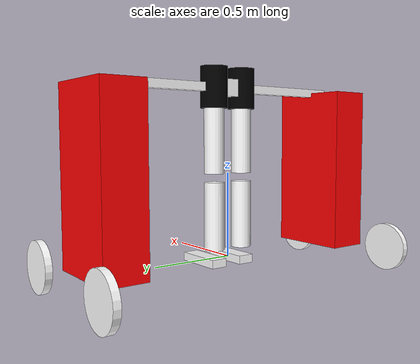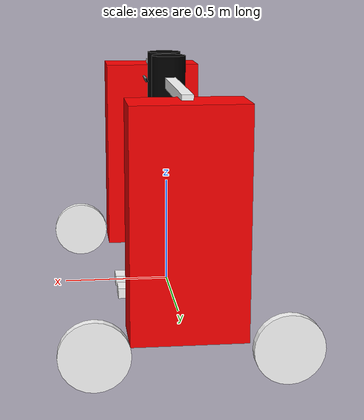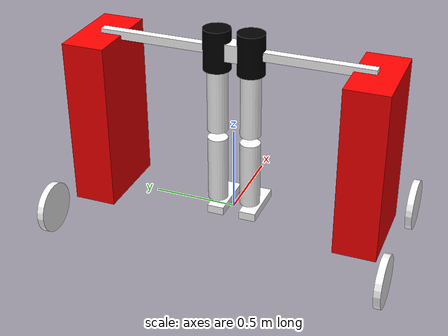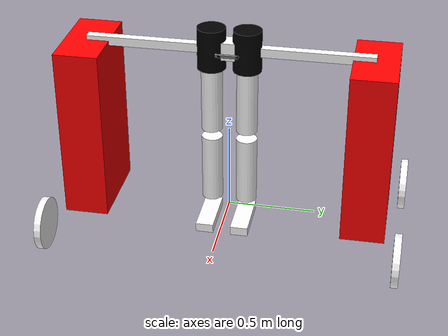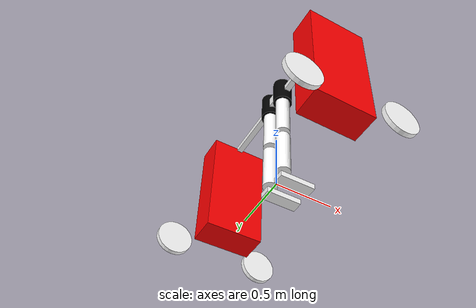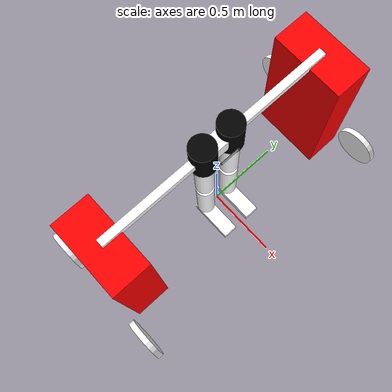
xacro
<?xml version="1.0"?>
<robot xmlns:xacro="http://www.ros.org/wiki/xacro" name="jetleg_testrig_vision">
  <xacro:include filename="$(find jetleg_description)/urdf/jetleg_testrig.xacro"/>
  <xacro:include filename="$(find jetleg_description)/urdf/components/stereo_camera.xacro"/>

  <xacro:stereo_camera baseline="0.1">
      <joint name="gantry_to_camera_base" type="fixed">
          <parent link="gantry" />
          <child link="camera_base" />
          <origin xyz="0.1 0 0" rpy="0 ${20*pi/180} 0" />
      </joint>
  </xacro:stereo_camera>
</robot>

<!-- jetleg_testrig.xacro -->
<robot xmlns:xacro="http://www.ros.org/wiki/xacro" name="jetleg_testrig">

    <!-- Include the basic testrig -->
    <xacro:include filename="$(find jetleg_description)/urdf/testrig.xacro"/>
    <!-- Include the JetLeg -->
    <xacro:include filename="$(find jetleg_description)/urdf/jetleg.xacro"/>

    <!-- Define reusable variables -->
    <xacro:property name="wheel_length" value="0.04" />
    <xacro:property name="wheel_radius" value="0.15" />
    <xacro:property name="wheel_offset" value="0.4" />

    <!-- Define the wheel macro -->
    <xacro:macro name="wheel" params="wheelpos parentsupport reflect offset">
        <link name="wheel_${wheelpos}">
            <contact>
                <rolling_friction value="0.001"/>
                <spinning_friction value="0.001"/>
            </contact>
            <visual>
                <geometry>
                    <cylinder length="${wheel_length}" radius="${wheel_radius}" />
                </geometry>
                <material name="white" />
            </visual>

            <collision>
                <geometry>
                    <cylinder length="${wheel_length}" radius="${wheel_radius}" />
                </geometry>
                <contact_coefficients mu="1.0" />
            </collision>

            <inertial>
                <mass value="10"/>
                <inertia ixx="0.001" ixy="0" ixz="0" iyy="0.001" iyz="0" izz="0.001"/>
            </inertial>
        </link>

        <joint name="wheel_${wheelpos}_joint" type="continuous">
            <parent link="support_${parentsupport}" />
            <child link="wheel_${wheelpos}" />
            <origin xyz="${offset} ${0.2 * reflect} -${gantry_height / 2}" rpy="1.57 0 0" />
            <axis xyz="0 0 -1" />
        </joint>
    </xacro:macro>

    <!-- Create four wheels for the testrig -->
    <xacro:wheel wheelpos="fore_left" parentsupport="left" reflect="1" offset="${wheel_offset}" />
    <xacro:wheel wheelpos="fore_right" parentsupport="right" reflect="-1" offset="${wheel_offset}" />

    <xacro:wheel wheelpos="hind_left" parentsupport="left" reflect="1" offset="${-wheel_offset}" />
    <xacro:wheel wheelpos="hind_right" parentsupport="right" reflect="-1" offset="${-wheel_offset}" />

    <!-- Create two JetLegs -->
    <xacro:jetleg identifier="">
    </xacro:jetleg>

    <xacro:jetleg identifier="_intact">
    </xacro:jetleg>

    <!-- Use mounts to attach legs to the testrig -->
    <link name="mount">
        <visual>
            <geometry>
                <cylinder length="${mount_length}" radius="0.08"/>
            </geometry>
            <material name="black"/>
        </visual>
        <inertial>
                <mass value="1"/>
                <inertia ixx="1" ixy="0" ixz="0" iyy="1" iyz="0" izz="1"/>
                <origin rpy="0 0 0" xyz="0 0 0"/>
        </inertial>
    </link>
    <gazebo reference="mount">
        <material>Gazebo/Black</material>
    </gazebo>

    <link name="mount_intact">
        <visual>
            <geometry>
                <cylinder length="${mount_length}" radius="0.08"/>
            </geometry>
            <material name="black"/>
        </visual>
        <inertial>
                <mass value="1"/>
                <inertia ixx="1" ixy="0" ixz="0" iyy="1" iyz="0" izz="1"/>
                <origin rpy="0 0 0" xyz="0 0 0"/>
        </inertial>
    </link>
    <gazebo reference="mount_intact">
        <material>Gazebo/Black</material>
    </gazebo>

    <!-- Define the additional joints of the robot -->

    <joint name="vertical_rail_to_mount" type="revolute">
        <origin rpy="0 0 0" xyz="0 -0.1 0"/>
        <parent link="vertical_rail"/>
        <child link="mount"/>
        <limit effort="100" lower="${-mount_angle_lim}" upper="${mount_angle_lim}" velocity="10"/>
        <axis xyz="0 1 0"/>
    </joint>

    <joint name="vertical_rail_to_mount_intact" type="revolute">
        <origin rpy="0 0 0" xyz="0 0.1 0"/>
        <parent link="vertical_rail"/>
        <child link="mount_intact"/>
        <limit effort="100" lower="${-mount_angle_lim}" upper="${mount_angle_lim}" velocity="10"/>
        <axis xyz="0 1 0"/>
    </joint>

    <joint name="mount_to_jetleg" type="fixed">
        <parent link="mount"/>
        <child link="thigh"/>
        <origin xyz="0 0 ${-thigh_length/2}" rpy="0 0 0"/>
        <axis xyz="0 0 -1" />
        <limit effort="100" velocity="10" lower="0" upper="0.6" />
    </joint>

    <joint name="mount_to_jetleg_intact" type="fixed">
        <parent link="mount_intact"/>
        <child link="thigh_intact"/>
        <origin xyz="0 0 ${-thigh_length/2}" rpy="0 0 0"/>
        <axis xyz="0 0 -1" />
        <limit effort="100" velocity="10" lower="0" upper="0.6" />
    </joint>

    <gazebo>
        <plugin filename="libgazebo_ros2_control.so" name="gazebo_ros2_control">
            <parameters>$(find jetleg_description)/ros2_control/ros2_controllers.yaml</parameters>

            <robot_param>robot_description</robot_param>
            <robot_param_node>robot_state_publisher</robot_param_node>
        </plugin>
    </gazebo>
</robot>

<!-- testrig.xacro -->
<robot xmlns:xacro="http://www.ros.org/wiki/xacro" name="testrig">

    <xacro:include filename="$(find jetleg_description)/urdf/colors.xacro" />
    <xacro:include filename="$(find jetleg_description)/urdf/gazebo/testrig_gazebo.xacro" />

    <xacro:property name="gantry_height" value="1" />
    <xacro:property name="gantry_width" value="1.6" />
    <xacro:property name="mount_angle_lim" value="${40*pi/180}" />
    <xacro:property name="mount_length" value="0.24" />

    <link name="base_link">
    </link>

    <link name="vertical_rail">
        <visual>
            <geometry>
                <box size="0.1 0.1 0.1"/>
            </geometry>
            <material name="white"/>
        </visual>
        <inertial>
            <mass value="30"/>
            <inertia ixx="1" ixy="0" ixz="0" iyy="1" iyz="0" izz="1"/>
        </inertial>
    </link>

    <link name="gantry">
        <visual>
            <geometry>
                <box size="0.05 ${gantry_width} 0.05"/>
            </geometry>
            <material name="white"/>
        </visual>

        <inertial>
            <mass value="1"/>
            <inertia ixx="1" ixy="0" ixz="0" iyy="1" iyz="0" izz="1"/>
        </inertial>
    </link>

    <xacro:macro name="support" params="postfix reflect">
        <link name="support_${postfix}">
            <visual>
                <geometry>
                    <box size="0.5 0.25 ${gantry_height}"/>
                </geometry>
                <material name="red"/>
            </visual>
            <collision>
                <geometry>
                    <box size="0.5 0.25 ${gantry_height}"/>
                </geometry>
            </collision>
            <inertial>
                <mass value="1000"/>
                <inertia ixx="1" ixy="0" ixz="0" iyy="1" iyz="0" izz="1"/>
            </inertial>
        </link>

        <joint name="gantry_to_support_${postfix}" type="fixed">
            <parent link="gantry"/>
            <child link="support_${postfix}"/>
            <origin xyz="0 ${reflect * gantry_width/2} ${-gantry_height/2}" />
        </joint>
    </xacro:macro>

    <xacro:support postfix="left" reflect="1" />
    <xacro:support postfix="right" reflect="-1" />

    <joint name="base_to_gantry" type="fixed">
        <origin rpy="0 0 0" xyz="0 0 ${gantry_height}"/>
        <parent link="base_link"/>
        <child link="gantry"/>
    </joint>

    <joint name="gantry_to_vertical_rail" type="fixed">
        <origin rpy="0 0 0" xyz="0 0 0"/>
        <parent link="gantry"/>
        <child link="vertical_rail"/>
    </joint>

</robot>

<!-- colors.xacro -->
<robot xmlns:xacro="http://www.ros.org/wiki/xacro" name="colors">
    <material name="white">
        <color rgba="1 1 1 1"/>
    </material>
    <material name="black">
        <color rgba="0 0 0 1"/>
    </material>
    <material name="grey">
        <color rgba="0.5 0.5 0.5 1"/>
    </material>
    <material name="red">
        <color rgba="1 0 0 1"/>
    </material>
    <material name="red_transluscent">
        <color rgba="1 0 0 0.25"/>
    </material>
    <material name="white_transluscent">
        <color rgba="1 1 1 0.25"/>
    </material>
</robot>

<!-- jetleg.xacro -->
<robot xmlns:xacro="http://www.ros.org/wiki/xacro" name="jetleg">

    <xacro:property name="thigh_length" value="0.5" />
    <xacro:property name="shank_length" value="0.4" />
    <xacro:property name="knee_joint_radius" value="0.025" />
    <xacro:property name="ankle_joint_radius" value="0.025" />
    <xacro:property name="foot_length" value="0.3" />
    <xacro:property name="foot_width" value="0.1" />
    <xacro:property name="foot_height" value="0.05" />

    <xacro:property name="thigh_mass" value="1" />
    <xacro:property name="shank_mass" value="1" />
    <xacro:property name="foot_mass" value="1.5" />

    <xacro:macro name="jetleg" params="identifier">
        <link name="thigh${identifier}">
            <visual>
                <geometry>
                    <cylinder length="${thigh_length}" radius="0.06"/>
                </geometry>
                <material name="white"/>
            </visual>
            <collision>
                <geometry>
                    <cylinder length="${thigh_length}" radius="0.06"/>
                </geometry>
            </collision>
            <inertial>
            <mass value="${thigh_mass}"/>
            <inertia ixx="1" ixy="0" ixz="0" iyy="1" iyz="0" izz="1"/>
        </inertial>
        </link>

        <link name="shank${identifier}">
            <visual>
                <geometry>
                    <cylinder length="${shank_length}" radius="0.06"/>
                </geometry>
                <material name="white"/>
                <origin rpy="0 0 0" xyz="0 0 ${-shank_length/2-knee_joint_radius}"/>
            </visual>
            <collision>
                <geometry>
                    <cylinder length="${shank_length}" radius="0.06"/>
                </geometry>
                <origin rpy="0 0 0" xyz="0 0 ${-shank_length/2-knee_joint_radius}"/>
            </collision>
            <inertial>
                <mass value="${shank_mass}"/>
                <inertia ixx="1" ixy="0" ixz="0" iyy="1" iyz="0" izz="1"/>
                <origin rpy="0 0 0" xyz="0 0 ${-shank_length/2-knee_joint_radius}"/>
            </inertial>
        </link>

        <joint name="knee_joint${identifier}" type="revolute">
            <origin rpy="0 0 0" xyz="0 0 ${-thigh_length/2-knee_joint_radius}"/>
            <parent link="thigh${identifier}"/>
            <child link="shank${identifier}"/>
            <axis xyz="0 1 0"/>
            <limit effort="100" lower="0.0" upper="2.5" velocity="10"/>
        </joint>

        <link name="foot${identifier}">
            <contact>
                <lateral_friction value="100"/>
            </contact>

            <visual>
                <geometry>
                    <box size="${foot_length} ${foot_width} ${foot_height}"/>
                </geometry>
                <material name="white"/>
                <origin xyz="${(foot_length/2-0.05)} 0 ${-ankle_joint_radius-foot_height/2}"/>
            </visual>
            <collision>
                <geometry>
                    <box size="${foot_length} ${foot_width} ${foot_height}"/>
                </geometry>
                <origin xyz="${(foot_length/2-0.05)} 0 ${-ankle_joint_radius-foot_height/2}"/>
            </collision>
            <inertial>
                <mass value="${foot_mass}"/>
                <inertia ixx="1" ixy="0" ixz="0" iyy="1" iyz="0" izz="1"/>
                <origin xyz="${(foot_length/2-0.05)} 0 ${-ankle_joint_radius-foot_height/2}"/>
            </inertial>
        </link>

        <joint name="ankle_joint${identifier}" type="revolute">
            <origin rpy="0 0 0" xyz="0 0 ${-(knee_joint_radius + shank_length + ankle_joint_radius)}"/>
            <parent link="shank${identifier}"/>
            <child link="foot${identifier}"/>
            <axis xyz="0 1 0"/>
            <limit effort="100" lower="-0.1" upper="0.5" velocity="10"/>
        </joint>

    </xacro:macro>
</robot>

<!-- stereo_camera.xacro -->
<robot xmlns:xacro="http://www.ros.org/wiki/xacro" name="stereo_camera">

    <!-- Specifies a macro for inserting a single stereovision camera into a xacro model description -->
    <xacro:macro name="stereo_camera" params="baseline *joint">
        <link name="camera_base">
            <visual>
                <geometry>
                    <box size="0.01 ${baseline+0.02} 0.02"/>
                </geometry>
                <origin xyz="0 0 0"/>
                <material name="grey"/>
            </visual>
            <inertial>
                <mass value="1" />
                <inertia ixx="1" ixy="0" ixz="0" iyy="1" iyz="0" izz="1" />
            </inertial>
        </link>

        <!-- Links representing the lenses -->
        <link name="camera_link">
            <visual>
                <geometry>
                    <cylinder radius="0.01" length="0.01"/>
                </geometry>
                <origin xyz="0.01 0 0" rpy="0 0 0" />
                <material name="black"/>
            </visual>
            <inertial>
                <mass value="1" />
                <inertia ixx="1" ixy="0" ixz="0" iyy="1" iyz="0" izz="1" />
            </inertial>
        </link>
        <link name="camera_link_right">
            <visual>
                <geometry>
                    <cylinder radius="0.01" length="0.01"/>
                </geometry>
                <origin xyz="0.01 0 0" rpy="0 0 0" />
                <material name="black"/>
            </visual>
            <inertial>
                <mass value="1" />
                <inertia ixx="1" ixy="0" ixz="0" iyy="1" iyz="0" izz="1" />
            </inertial>
        </link>

        <xacro:insert_block name="joint" />
        <joint name="camera_base_to_camera_link" type="fixed">
            <parent link="camera_base" />
            <child link="camera_link" />
            <origin xyz="0 ${-baseline/2} 0" rpy="${90*pi/180} 0 ${90*pi/180}" />
        </joint>
        <joint name="camera_base_to_camera_link_right" type="fixed">
            <parent link="camera_base" />
            <child link="camera_link_right" />
            <origin xyz="0 ${baseline/2} 0" rpy="${90*pi/180} 0 ${90*pi/180}" />
        </joint>

        <xacro:include filename="$(find jetleg_description)/urdf/gazebo/stereo_camera_gazebo.xacro" />
        <xacro:stereo_camera_gazebo baseline="${baseline}" />

    </xacro:macro>

</robot>

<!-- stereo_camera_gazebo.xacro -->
<robot xmlns:xacro="http://www.ros.org/wiki/xacro" name="stereo_camera_gazebo">

    <!-- Specifies a macro for inserting a single stereovision camera into a xacro model description -->
    <xacro:macro name="stereo_camera_gazebo" params="baseline">
        <gazebo reference="camera_base">
            <material>Gazebo/Grey</material>
        </gazebo>
        <gazebo reference="camera_link">
            <material>Gazebo/Black</material>
        </gazebo>
        <gazebo reference="camera_link_right">
            <material>Gazebo/Black</material>
        </gazebo>

        <!-- Used to align camera between Gazebo / ROS coordinate systems -->
        <link name="gazebo_camera_link">
        </link>

        <joint name="gazebo_camera_joint" type="fixed">
            <parent link="camera_link" />
            <child link="gazebo_camera_link" />
            <origin xyz="0 0 0" rpy="${pi/2} ${-pi/2} ${pi}" />
        </joint>

        <link name="gazebo_camera_optical_link">
        </link>

        <joint name="gazebo_camera_optical_joint" type="fixed">
            <parent link="gazebo_camera_link" />
            <child link="gazebo_camera_optical_link" />
            <origin xyz="0 0 0" rpy="${-pi/2} 0 ${-pi/2}" />
        </joint>

        <!-- Specifies configurations for simulating in Gazebo -->
        <gazebo reference="gazebo_camera_link">
            <sensor name="camera" type="depth">
                <visualize>true</visualize>
                <update_rate>60.0</update_rate>
                <camera name="head">
                    <horizontal_fov>${110*pi/180}</horizontal_fov>
                    <image>
                        <width>1280</width>
                        <height>720</height>
                        <format>R8G8B8</format>
                    </image>
                    <clip>
                        <near>1.0</near>
                        <far>20</far>
                    </clip>
                </camera>
                <plugin name="depth_camera_controller" filename="libgazebo_ros_camera.so">
                    <baseline>0.2</baseline>
                    <alwaysOn>true</alwaysOn>
                    <updateRate>0.0</updateRate>
                    <frame_name>gazebo_camera_optical_link</frame_name>
                    <pointCloudCutoff>0.1</pointCloudCutoff>
                    <pointCloudCutoffMax>10.0</pointCloudCutoffMax>
                    <distortionK1>0</distortionK1>
                    <distortionK2>0</distortionK2>
                    <distortionK3>0</distortionK3>
                    <distortionT1>0</distortionT1>
                    <distortionT2>0</distortionT2>
                    <CxPrime>0</CxPrime>
                    <Cx>0</Cx>
                    <Cy>0</Cy>
                    <min_depth>0.1</min_depth>
                    <max_depth>100.0</max_depth>
                    <focalLength>0</focalLength>
                    <hackBaseline>0</hackBaseline>
                </plugin>
            </sensor>
        </gazebo>

    </xacro:macro>

</robot>
